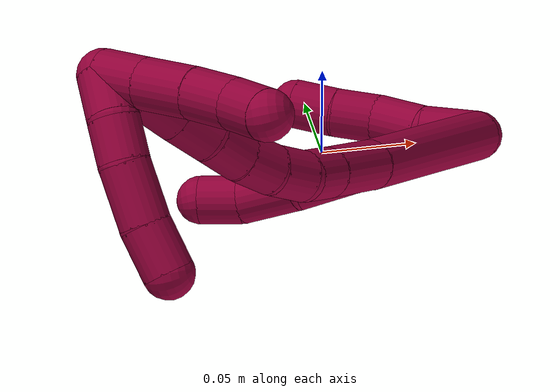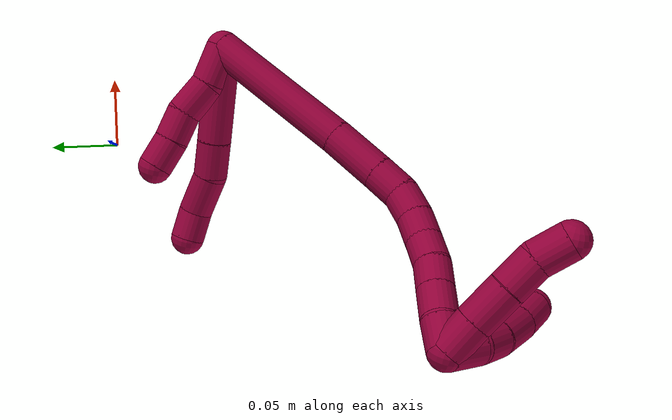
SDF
<sdf version="1.7">
 <world name="default">
  <model name="8">
   <static>0</static>
   <link name="8">
    <collision name="collision-cylinder-e_1_2_8">
     <pose>-0.000521 -0.004269 -0.034547 3.01865 -0.014963 -0.241918</pose>
     <geometry><cylinder><radius>0.0125</radius><length>0.069628</length></cylinder></geometry>
     <surface>
      <friction><ode><mu>1.16</mu><mu2>1.16</mu2><slip1>0</slip1><slip2>0</slip2></ode></friction>
      <contact><ode><kp>1e+06</kp><kd>1</kd><max_vel>0</max_vel><min_depth>0.001</min_depth></ode></contact>
     </surface>
    </collision>
    <visual name="visual-cylinder-e_1_2_8">
     <pose>-0.000521 -0.004269 -0.034547 3.01865 -0.014963 -0.241918</pose>
     <geometry><cylinder><radius>0.0125</radius><length>0.069628</length></cylinder></geometry>
     <material><ambient>0.584314 0 0.227451 1</ambient></material>
    </visual>
    <collision name="collision-cylinder-e_2_8_9">
     <pose>-0.00066 -0.010046 -0.082529 3.02977 0.028226 0.494044</pose>
     <geometry><cylinder><radius>0.0125</radius><length>0.027047</length></cylinder></geometry>
     <surface>
      <friction><ode><mu>1.16</mu><mu2>1.16</mu2><slip1>0</slip1><slip2>0</slip2></ode></friction>
      <contact><ode><kp>1e+06</kp><kd>1</kd><max_vel>0</max_vel><min_depth>0.001</min_depth></ode></contact>
     </surface>
    </collision>
    <visual name="visual-cylinder-e_2_8_9">
     <pose>-0.00066 -0.010046 -0.082529 3.02977 0.028226 0.494044</pose>
     <geometry><cylinder><radius>0.0125</radius><length>0.027047</length></cylinder></geometry>
     <material><ambient>0.584314 0 0.227451 1</ambient></material>
    </visual>
    <collision name="collision-cylinder-e_3_9_10">
     <pose>0.001953 -0.009233 -0.11124 -2.99077 0.143403 -1.52016</pose>
     <geometry><cylinder><radius>0.0125</radius><length>0.031227</length></cylinder></geometry>
     <surface>
      <friction><ode><mu>1.16</mu><mu2>1.16</mu2><slip1>0</slip1><slip2>0</slip2></ode></friction>
      <contact><ode><kp>1e+06</kp><kd>1</kd><max_vel>0</max_vel><min_depth>0.001</min_depth></ode></contact>
     </surface>
    </collision>
    <visual name="visual-cylinder-e_3_9_10">
     <pose>0.001953 -0.009233 -0.11124 -2.99077 0.143403 -1.52016</pose>
     <geometry><cylinder><radius>0.0125</radius><length>0.031227</length></cylinder></geometry>
     <material><ambient>0.584314 0 0.227451 1</ambient></material>
    </visual>
    <collision name="collision-cylinder-e_4_10_6">
     <pose>0.002147 -0.006097 -0.137347 -3.06657 -0.185424 2.37433</pose>
     <geometry><cylinder><radius>0.0125</radius><length>0.022098</length></cylinder></geometry>
     <surface>
      <friction><ode><mu>1.16</mu><mu2>1.16</mu2><slip1>0</slip1><slip2>0</slip2></ode></friction>
      <contact><ode><kp>1e+06</kp><kd>1</kd><max_vel>0</max_vel><min_depth>0.001</min_depth></ode></contact>
     </surface>
    </collision>
    <visual name="visual-cylinder-e_4_10_6">
     <pose>0.002147 -0.006097 -0.137347 -3.06657 -0.185424 2.37433</pose>
     <geometry><cylinder><radius>0.0125</radius><length>0.022098</length></cylinder></geometry>
     <material><ambient>0.584314 0 0.227451 1</ambient></material>
    </visual>
    <collision name="collision-cylinder-e_1_2_11">
     <pose>-0.003381 0.002559 -0.013742 -2.9575 -0.237318 1.82388</pose>
     <geometry><cylinder><radius>0.0125</radius><length>0.028763</length></cylinder></geometry>
     <surface>
      <friction><ode><mu>1.16</mu><mu2>1.16</mu2><slip1>0</slip1><slip2>0</slip2></ode></friction>
      <contact><ode><kp>1e+06</kp><kd>1</kd><max_vel>0</max_vel><min_depth>0.001</min_depth></ode></contact>
     </surface>
    </collision>
    <visual name="visual-cylinder-e_1_2_11">
     <pose>-0.003381 0.002559 -0.013742 -2.9575 -0.237318 1.82388</pose>
     <geometry><cylinder><radius>0.0125</radius><length>0.028763</length></cylinder></geometry>
     <material><ambient>0.584314 0 0.227451 1</ambient></material>
    </visual>
    <collision name="collision-cylinder-e_2_11_12">
     <pose>-0.008547 0.011381 -0.039102 -2.64711 -0.134426 0.521253</pose>
     <geometry><cylinder><radius>0.0125</radius><length>0.026637</length></cylinder></geometry>
     <surface>
      <friction><ode><mu>1.16</mu><mu2>1.16</mu2><slip1>0</slip1><slip2>0</slip2></ode></friction>
      <contact><ode><kp>1e+06</kp><kd>1</kd><max_vel>0</max_vel><min_depth>0.001</min_depth></ode></contact>
     </surface>
    </collision>
    <visual name="visual-cylinder-e_2_11_12">
     <pose>-0.008547 0.011381 -0.039102 -2.64711 -0.134426 0.521253</pose>
     <geometry><cylinder><radius>0.0125</radius><length>0.026637</length></cylinder></geometry>
     <material><ambient>0.584314 0 0.227451 1</ambient></material>
    </visual>
    <collision name="collision-cylinder-e_3_12_13">
     <pose>-0.01339 0.020022 -0.061321 -2.92107 -0.274376 1.78975</pose>
     <geometry><cylinder><radius>0.0125</radius><length>0.022575</length></cylinder></geometry>
     <surface>
      <friction><ode><mu>1.16</mu><mu2>1.16</mu2><slip1>0</slip1><slip2>0</slip2></ode></friction>
      <contact><ode><kp>1e+06</kp><kd>1</kd><max_vel>0</max_vel><min_depth>0.001</min_depth></ode></contact>
     </surface>
    </collision>
    <visual name="visual-cylinder-e_3_12_13">
     <pose>-0.01339 0.020022 -0.061321 -2.92107 -0.274376 1.78975</pose>
     <geometry><cylinder><radius>0.0125</radius><length>0.022575</length></cylinder></geometry>
     <material><ambient>0.584314 0 0.227451 1</ambient></material>
    </visual>
    <collision name="collision-cylinder-e_4_13_5">
     <pose>-0.019184 0.025966 -0.081977 -2.80059 -0.250992 1.26475</pose>
     <geometry><cylinder><radius>0.0125</radius><length>0.022025</length></cylinder></geometry>
     <surface>
      <friction><ode><mu>1.16</mu><mu2>1.16</mu2><slip1>0</slip1><slip2>0</slip2></ode></friction>
      <contact><ode><kp>1e+06</kp><kd>1</kd><max_vel>0</max_vel><min_depth>0.001</min_depth></ode></contact>
     </surface>
    </collision>
    <visual name="visual-cylinder-e_4_13_5">
     <pose>-0.019184 0.025966 -0.081977 -2.80059 -0.250992 1.26475</pose>
     <geometry><cylinder><radius>0.0125</radius><length>0.022025</length></cylinder></geometry>
     <material><ambient>0.584314 0 0.227451 1</ambient></material>
    </visual>
    <collision name="collision-cylinder-e_1_2_14">
     <pose>-0.029929 -0.044342 -0.016405 1.92515 -0.564344 -0.789077</pose>
     <geometry><cylinder><radius>0.0125</radius><length>0.111911</length></cylinder></geometry>
     <surface>
      <friction><ode><mu>1.16</mu><mu2>1.16</mu2><slip1>0</slip1><slip2>0</slip2></ode></friction>
      <contact><ode><kp>1e+06</kp><kd>1</kd><max_vel>0</max_vel><min_depth>0.001</min_depth></ode></contact>
     </surface>
    </collision>
    <visual name="visual-cylinder-e_1_2_14">
     <pose>-0.029929 -0.044342 -0.016405 1.92515 -0.564344 -0.789077</pose>
     <geometry><cylinder><radius>0.0125</radius><length>0.111911</length></cylinder></geometry>
     <material><ambient>0.584314 0 0.227451 1</ambient></material>
    </visual>
    <collision name="collision-cylinder-e_2_14_15">
     <pose>-0.071293 -0.104001 -0.039151 1.96328 -0.603888 -0.87222</pose>
     <geometry><cylinder><radius>0.0125</radius><length>0.04028</length></cylinder></geometry>
     <surface>
      <friction><ode><mu>1.16</mu><mu2>1.16</mu2><slip1>0</slip1><slip2>0</slip2></ode></friction>
      <contact><ode><kp>1e+06</kp><kd>1</kd><max_vel>0</max_vel><min_depth>0.001</min_depth></ode></contact>
     </surface>
    </collision>
    <visual name="visual-cylinder-e_2_14_15">
     <pose>-0.071293 -0.104001 -0.039151 1.96328 -0.603888 -0.87222</pose>
     <geometry><cylinder><radius>0.0125</radius><length>0.04028</length></cylinder></geometry>
     <material><ambient>0.584314 0 0.227451 1</ambient></material>
    </visual>
    <collision name="collision-cylinder-e_3_15_16">
     <pose>-0.088961 -0.127418 -0.04907 1.98679 -0.613206 -0.904708</pose>
     <geometry><cylinder><radius>0.0125</radius><length>0.021656</length></cylinder></geometry>
     <surface>
      <friction><ode><mu>1.16</mu><mu2>1.16</mu2><slip1>0</slip1><slip2>0</slip2></ode></friction>
      <contact><ode><kp>1e+06</kp><kd>1</kd><max_vel>0</max_vel><min_depth>0.001</min_depth></ode></contact>
     </surface>
    </collision>
    <visual name="visual-cylinder-e_3_15_16">
     <pose>-0.088961 -0.127418 -0.04907 1.98679 -0.613206 -0.904708</pose>
     <geometry><cylinder><radius>0.0125</radius><length>0.021656</length></cylinder></geometry>
     <material><ambient>0.584314 0 0.227451 1</ambient></material>
    </visual>
    <collision name="collision-cylinder-e_4_16_17">
     <pose>-0.102662 -0.140649 -0.057653 2.34357 -0.806042 -1.58195</pose>
     <geometry><cylinder><radius>0.0125</radius><length>0.020706</length></cylinder></geometry>
     <surface>
      <friction><ode><mu>1.16</mu><mu2>1.16</mu2><slip1>0</slip1><slip2>0</slip2></ode></friction>
      <contact><ode><kp>1e+06</kp><kd>1</kd><max_vel>0</max_vel><min_depth>0.001</min_depth></ode></contact>
     </surface>
    </collision>
    <visual name="visual-cylinder-e_4_16_17">
     <pose>-0.102662 -0.140649 -0.057653 2.34357 -0.806042 -1.58195</pose>
     <geometry><cylinder><radius>0.0125</radius><length>0.020706</length></cylinder></geometry>
     <material><ambient>0.584314 0 0.227451 1</ambient></material>
    </visual>
    <collision name="collision-cylinder-e_5_17_18">
     <pose>-0.118184 -0.149054 -0.067627 2.55925 -0.934338 -2.0694</pose>
     <geometry><cylinder><radius>0.0125</radius><length>0.020024</length></cylinder></geometry>
     <surface>
      <friction><ode><mu>1.16</mu><mu2>1.16</mu2><slip1>0</slip1><slip2>0</slip2></ode></friction>
      <contact><ode><kp>1e+06</kp><kd>1</kd><max_vel>0</max_vel><min_depth>0.001</min_depth></ode></contact>
     </surface>
    </collision>
    <visual name="visual-cylinder-e_5_17_18">
     <pose>-0.118184 -0.149054 -0.067627 2.55925 -0.934338 -2.0694</pose>
     <geometry><cylinder><radius>0.0125</radius><length>0.020024</length></cylinder></geometry>
     <material><ambient>0.584314 0 0.227451 1</ambient></material>
    </visual>
    <collision name="collision-cylinder-e_6_18_19">
     <pose>-0.135186 -0.154897 -0.076856 2.59883 -1.06347 -2.25796</pose>
     <geometry><cylinder><radius>0.0125</radius><length>0.020479</length></cylinder></geometry>
     <surface>
      <friction><ode><mu>1.16</mu><mu2>1.16</mu2><slip1>0</slip1><slip2>0</slip2></ode></friction>
      <contact><ode><kp>1e+06</kp><kd>1</kd><max_vel>0</max_vel><min_depth>0.001</min_depth></ode></contact>
     </surface>
    </collision>
    <visual name="visual-cylinder-e_6_18_19">
     <pose>-0.135186 -0.154897 -0.076856 2.59883 -1.06347 -2.25796</pose>
     <geometry><cylinder><radius>0.0125</radius><length>0.020479</length></cylinder></geometry>
     <material><ambient>0.584314 0 0.227451 1</ambient></material>
    </visual>
    <collision name="collision-cylinder-e_7_19_20">
     <pose>-0.152799 -0.158612 -0.086368 2.92679 -1.01543 -2.75876</pose>
     <geometry><cylinder><radius>0.0125</radius><length>0.020392</length></cylinder></geometry>
     <surface>
      <friction><ode><mu>1.16</mu><mu2>1.16</mu2><slip1>0</slip1><slip2>0</slip2></ode></friction>
      <contact><ode><kp>1e+06</kp><kd>1</kd><max_vel>0</max_vel><min_depth>0.001</min_depth></ode></contact>
     </surface>
    </collision>
    <visual name="visual-cylinder-e_7_19_20">
     <pose>-0.152799 -0.158612 -0.086368 2.92679 -1.01543 -2.75876</pose>
     <geometry><cylinder><radius>0.0125</radius><length>0.020392</length></cylinder></geometry>
     <material><ambient>0.584314 0 0.227451 1</ambient></material>
    </visual>
    <collision name="collision-cylinder-e_8_20_21">
     <pose>-0.171367 -0.160983 -0.09714 2.92321 -1.05211 -2.76837</pose>
     <geometry><cylinder><radius>0.0125</radius><length>0.022808</length></cylinder></geometry>
     <surface>
      <friction><ode><mu>1.16</mu><mu2>1.16</mu2><slip1>0</slip1><slip2>0</slip2></ode></friction>
      <contact><ode><kp>1e+06</kp><kd>1</kd><max_vel>0</max_vel><min_depth>0.001</min_depth></ode></contact>
     </surface>
    </collision>
    <visual name="visual-cylinder-e_8_20_21">
     <pose>-0.171367 -0.160983 -0.09714 2.92321 -1.05211 -2.76837</pose>
     <geometry><cylinder><radius>0.0125</radius><length>0.022808</length></cylinder></geometry>
     <material><ambient>0.584314 0 0.227451 1</ambient></material>
    </visual>
    <collision name="collision-cylinder-e_9_21_1">
     <pose>-0.189862 -0.164573 -0.108888 2.77864 -0.911127 -2.42488</pose>
     <geometry><cylinder><radius>0.0125</radius><length>0.021745</length></cylinder></geometry>
     <surface>
      <friction><ode><mu>1.16</mu><mu2>1.16</mu2><slip1>0</slip1><slip2>0</slip2></ode></friction>
      <contact><ode><kp>1e+06</kp><kd>1</kd><max_vel>0</max_vel><min_depth>0.001</min_depth></ode></contact>
     </surface>
    </collision>
    <visual name="visual-cylinder-e_9_21_1">
     <pose>-0.189862 -0.164573 -0.108888 2.77864 -0.911127 -2.42488</pose>
     <geometry><cylinder><radius>0.0125</radius><length>0.021745</length></cylinder></geometry>
     <material><ambient>0.584314 0 0.227451 1</ambient></material>
    </visual>
    <collision name="collision-cylinder-e_1_1_22">
     <pose>-0.192623 -0.177159 -0.113491 1.41298 0.513081 0.440487</pose>
     <geometry><cylinder><radius>0.0125</radius><length>0.023756</length></cylinder></geometry>
     <surface>
      <friction><ode><mu>1.16</mu><mu2>1.16</mu2><slip1>0</slip1><slip2>0</slip2></ode></friction>
      <contact><ode><kp>1e+06</kp><kd>1</kd><max_vel>0</max_vel><min_depth>0.001</min_depth></ode></contact>
     </surface>
    </collision>
    <visual name="visual-cylinder-e_1_1_22">
     <pose>-0.192623 -0.177159 -0.113491 1.41298 0.513081 0.440487</pose>
     <geometry><cylinder><radius>0.0125</radius><length>0.023756</length></cylinder></geometry>
     <material><ambient>0.584314 0 0.227451 1</ambient></material>
    </visual>
    <collision name="collision-cylinder-e_2_22_23">
     <pose>-0.179302 -0.194999 -0.111026 1.46114 0.773804 0.700027</pose>
     <geometry><cylinder><radius>0.0125</radius><length>0.021436</length></cylinder></geometry>
     <surface>
      <friction><ode><mu>1.16</mu><mu2>1.16</mu2><slip1>0</slip1><slip2>0</slip2></ode></friction>
      <contact><ode><kp>1e+06</kp><kd>1</kd><max_vel>0</max_vel><min_depth>0.001</min_depth></ode></contact>
     </surface>
    </collision>
    <visual name="visual-cylinder-e_2_22_23">
     <pose>-0.179302 -0.194999 -0.111026 1.46114 0.773804 0.700027</pose>
     <geometry><cylinder><radius>0.0125</radius><length>0.021436</length></cylinder></geometry>
     <material><ambient>0.584314 0 0.227451 1</ambient></material>
    </visual>
    <collision name="collision-cylinder-e_3_23_24">
     <pose>-0.159783 -0.211559 -0.108229 1.3552 0.920434 0.759128</pose>
     <geometry><cylinder><radius>0.0125</radius><length>0.030228</length></cylinder></geometry>
     <surface>
      <friction><ode><mu>1.16</mu><mu2>1.16</mu2><slip1>0</slip1><slip2>0</slip2></ode></friction>
      <contact><ode><kp>1e+06</kp><kd>1</kd><max_vel>0</max_vel><min_depth>0.001</min_depth></ode></contact>
     </surface>
    </collision>
    <visual name="visual-cylinder-e_3_23_24">
     <pose>-0.159783 -0.211559 -0.108229 1.3552 0.920434 0.759128</pose>
     <geometry><cylinder><radius>0.0125</radius><length>0.030228</length></cylinder></geometry>
     <material><ambient>0.584314 0 0.227451 1</ambient></material>
    </visual>
    <collision name="collision-cylinder-e_4_24_4">
     <pose>-0.137884 -0.227175 -0.103264 1.1476 0.932468 0.628943</pose>
     <geometry><cylinder><radius>0.0125</radius><length>0.024579</length></cylinder></geometry>
     <surface>
      <friction><ode><mu>1.16</mu><mu2>1.16</mu2><slip1>0</slip1><slip2>0</slip2></ode></friction>
      <contact><ode><kp>1e+06</kp><kd>1</kd><max_vel>0</max_vel><min_depth>0.001</min_depth></ode></contact>
     </surface>
    </collision>
    <visual name="visual-cylinder-e_4_24_4">
     <pose>-0.137884 -0.227175 -0.103264 1.1476 0.932468 0.628943</pose>
     <geometry><cylinder><radius>0.0125</radius><length>0.024579</length></cylinder></geometry>
     <material><ambient>0.584314 0 0.227451 1</ambient></material>
    </visual>
    <collision name="collision-cylinder-e_1_1_25">
     <pose>-0.197363 -0.172559 -0.104515 0.48745 0.090635 0.022553</pose>
     <geometry><cylinder><radius>0.0125</radius><length>0.0241</length></cylinder></geometry>
     <surface>
      <friction><ode><mu>1.16</mu><mu2>1.16</mu2><slip1>0</slip1><slip2>0</slip2></ode></friction>
      <contact><ode><kp>1e+06</kp><kd>1</kd><max_vel>0</max_vel><min_depth>0.001</min_depth></ode></contact>
     </surface>
    </collision>
    <visual name="visual-cylinder-e_1_1_25">
     <pose>-0.197363 -0.172559 -0.104515 0.48745 0.090635 0.022553</pose>
     <geometry><cylinder><radius>0.0125</radius><length>0.0241</length></cylinder></geometry>
     <material><ambient>0.584314 0 0.227451 1</ambient></material>
    </visual>
    <collision name="collision-cylinder-e_2_25_26">
     <pose>-0.195485 -0.185067 -0.081613 0.510437 0.055776 0.014556</pose>
     <geometry><cylinder><radius>0.0125</radius><length>0.028236</length></cylinder></geometry>
     <surface>
      <friction><ode><mu>1.16</mu><mu2>1.16</mu2><slip1>0</slip1><slip2>0</slip2></ode></friction>
      <contact><ode><kp>1e+06</kp><kd>1</kd><max_vel>0</max_vel><min_depth>0.001</min_depth></ode></contact>
     </surface>
    </collision>
    <visual name="visual-cylinder-e_2_25_26">
     <pose>-0.195485 -0.185067 -0.081613 0.510437 0.055776 0.014556</pose>
     <geometry><cylinder><radius>0.0125</radius><length>0.028236</length></cylinder></geometry>
     <material><ambient>0.584314 0 0.227451 1</ambient></material>
    </visual>
    <collision name="collision-cylinder-e_3_26_27">
     <pose>-0.193501 -0.198088 -0.059129 0.54213 0.10036 0.027912</pose>
     <geometry><cylinder><radius>0.0125</radius><length>0.023897</length></cylinder></geometry>
     <surface>
      <friction><ode><mu>1.16</mu><mu2>1.16</mu2><slip1>0</slip1><slip2>0</slip2></ode></friction>
      <contact><ode><kp>1e+06</kp><kd>1</kd><max_vel>0</max_vel><min_depth>0.001</min_depth></ode></contact>
     </surface>
    </collision>
    <visual name="visual-cylinder-e_3_26_27">
     <pose>-0.193501 -0.198088 -0.059129 0.54213 0.10036 0.027912</pose>
     <geometry><cylinder><radius>0.0125</radius><length>0.023897</length></cylinder></geometry>
     <material><ambient>0.584314 0 0.227451 1</ambient></material>
    </visual>
    <collision name="collision-cylinder-e_4_27_3">
     <pose>-0.193335 -0.212429 -0.040414 0.766018 -0.086865 -0.035017</pose>
     <geometry><cylinder><radius>0.0125</radius><length>0.023767</length></cylinder></geometry>
     <surface>
      <friction><ode><mu>1.16</mu><mu2>1.16</mu2><slip1>0</slip1><slip2>0</slip2></ode></friction>
      <contact><ode><kp>1e+06</kp><kd>1</kd><max_vel>0</max_vel><min_depth>0.001</min_depth></ode></contact>
     </surface>
    </collision>
    <visual name="visual-cylinder-e_4_27_3">
     <pose>-0.193335 -0.212429 -0.040414 0.766018 -0.086865 -0.035017</pose>
     <geometry><cylinder><radius>0.0125</radius><length>0.023767</length></cylinder></geometry>
     <material><ambient>0.584314 0 0.227451 1</ambient></material>
    </visual>
    <collision name="collision-sphere-3">
     <pose>-0.194366 -0.220636 -0.031882 0 -0 0</pose>
     <geometry><sphere><radius>0.0125</radius></sphere></geometry>
     <surface>
      <friction><ode><mu>1.16</mu><mu2>1.16</mu2><slip1>0</slip1><slip2>0</slip2></ode></friction>
      <contact><ode><kp>1e+06</kp><kd>1</kd><max_vel>0</max_vel><min_depth>0.001</min_depth></ode></contact>
     </surface>
    </collision>
    <visual name="visual-sphere-3">
     <pose>-0.194366 -0.220636 -0.031882 0 -0 0</pose>
     <geometry><sphere><radius>0.0125</radius></sphere></geometry>
     <material><ambient>0.584314 0 0.227451 1</ambient></material>
    </visual>
    <collision name="collision-sphere-27">
     <pose>-0.192304 -0.204222 -0.048946 0 -0 0</pose>
     <geometry><sphere><radius>0.0125</radius></sphere></geometry>
     <surface>
      <friction><ode><mu>1.16</mu><mu2>1.16</mu2><slip1>0</slip1><slip2>0</slip2></ode></friction>
      <contact><ode><kp>1e+06</kp><kd>1</kd><max_vel>0</max_vel><min_depth>0.001</min_depth></ode></contact>
     </surface>
    </collision>
    <visual name="visual-sphere-27">
     <pose>-0.192304 -0.204222 -0.048946 0 -0 0</pose>
     <geometry><sphere><radius>0.0125</radius></sphere></geometry>
     <material><ambient>0.584314 0 0.227451 1</ambient></material>
    </visual>
    <collision name="collision-sphere-26">
     <pose>-0.194698 -0.191954 -0.069313 0 -0 0</pose>
     <geometry><sphere><radius>0.0125</radius></sphere></geometry>
     <surface>
      <friction><ode><mu>1.16</mu><mu2>1.16</mu2><slip1>0</slip1><slip2>0</slip2></ode></friction>
      <contact><ode><kp>1e+06</kp><kd>1</kd><max_vel>0</max_vel><min_depth>0.001</min_depth></ode></contact>
     </surface>
    </collision>
    <visual name="visual-sphere-26">
     <pose>-0.194698 -0.191954 -0.069313 0 -0 0</pose>
     <geometry><sphere><radius>0.0125</radius></sphere></geometry>
     <material><ambient>0.584314 0 0.227451 1</ambient></material>
    </visual>
    <collision name="collision-sphere-25">
     <pose>-0.196272 -0.17818 -0.093912 0 -0 0</pose>
     <geometry><sphere><radius>0.0125</radius></sphere></geometry>
     <surface>
      <friction><ode><mu>1.16</mu><mu2>1.16</mu2><slip1>0</slip1><slip2>0</slip2></ode></friction>
      <contact><ode><kp>1e+06</kp><kd>1</kd><max_vel>0</max_vel><min_depth>0.001</min_depth></ode></contact>
     </surface>
    </collision>
    <visual name="visual-sphere-25">
     <pose>-0.196272 -0.17818 -0.093912 0 -0 0</pose>
     <geometry><sphere><radius>0.0125</radius></sphere></geometry>
     <material><ambient>0.584314 0 0.227451 1</ambient></material>
    </visual>
    <collision name="collision-sphere-4">
     <pose>-0.128014 -0.233852 -0.100257 0 -0 0</pose>
     <geometry><sphere><radius>0.0125</radius></sphere></geometry>
     <surface>
      <friction><ode><mu>1.16</mu><mu2>1.16</mu2><slip1>0</slip1><slip2>0</slip2></ode></friction>
      <contact><ode><kp>1e+06</kp><kd>1</kd><max_vel>0</max_vel><min_depth>0.001</min_depth></ode></contact>
     </surface>
    </collision>
    <visual name="visual-sphere-4">
     <pose>-0.128014 -0.233852 -0.100257 0 -0 0</pose>
     <geometry><sphere><radius>0.0125</radius></sphere></geometry>
     <material><ambient>0.584314 0 0.227451 1</ambient></material>
    </visual>
    <collision name="collision-sphere-24">
     <pose>-0.147754 -0.220498 -0.106271 0 -0 0</pose>
     <geometry><sphere><radius>0.0125</radius></sphere></geometry>
     <surface>
      <friction><ode><mu>1.16</mu><mu2>1.16</mu2><slip1>0</slip1><slip2>0</slip2></ode></friction>
      <contact><ode><kp>1e+06</kp><kd>1</kd><max_vel>0</max_vel><min_depth>0.001</min_depth></ode></contact>
     </surface>
    </collision>
    <visual name="visual-sphere-24">
     <pose>-0.147754 -0.220498 -0.106271 0 -0 0</pose>
     <geometry><sphere><radius>0.0125</radius></sphere></geometry>
     <material><ambient>0.584314 0 0.227451 1</ambient></material>
    </visual>
    <collision name="collision-sphere-23">
     <pose>-0.171811 -0.202619 -0.110187 0 -0 0</pose>
     <geometry><sphere><radius>0.0125</radius></sphere></geometry>
     <surface>
      <friction><ode><mu>1.16</mu><mu2>1.16</mu2><slip1>0</slip1><slip2>0</slip2></ode></friction>
      <contact><ode><kp>1e+06</kp><kd>1</kd><max_vel>0</max_vel><min_depth>0.001</min_depth></ode></contact>
     </surface>
    </collision>
    <visual name="visual-sphere-23">
     <pose>-0.171811 -0.202619 -0.110187 0 -0 0</pose>
     <geometry><sphere><radius>0.0125</radius></sphere></geometry>
     <material><ambient>0.584314 0 0.227451 1</ambient></material>
    </visual>
    <collision name="collision-sphere-22">
     <pose>-0.186792 -0.187379 -0.111864 0 -0 0</pose>
     <geometry><sphere><radius>0.0125</radius></sphere></geometry>
     <surface>
      <friction><ode><mu>1.16</mu><mu2>1.16</mu2><slip1>0</slip1><slip2>0</slip2></ode></friction>
      <contact><ode><kp>1e+06</kp><kd>1</kd><max_vel>0</max_vel><min_depth>0.001</min_depth></ode></contact>
     </surface>
    </collision>
    <visual name="visual-sphere-22">
     <pose>-0.186792 -0.187379 -0.111864 0 -0 0</pose>
     <geometry><sphere><radius>0.0125</radius></sphere></geometry>
     <material><ambient>0.584314 0 0.227451 1</ambient></material>
    </visual>
    <collision name="collision-sphere-1">
     <pose>-0.198454 -0.166939 -0.115117 0 -0 0</pose>
     <geometry><sphere><radius>0.0125</radius></sphere></geometry>
     <surface>
      <friction><ode><mu>1.16</mu><mu2>1.16</mu2><slip1>0</slip1><slip2>0</slip2></ode></friction>
      <contact><ode><kp>1e+06</kp><kd>1</kd><max_vel>0</max_vel><min_depth>0.001</min_depth></ode></contact>
     </surface>
    </collision>
    <visual name="visual-sphere-1">
     <pose>-0.198454 -0.166939 -0.115117 0 -0 0</pose>
     <geometry><sphere><radius>0.0125</radius></sphere></geometry>
     <material><ambient>0.584314 0 0.227451 1</ambient></material>
    </visual>
    <collision name="collision-sphere-21">
     <pose>-0.181271 -0.162207 -0.102659 0 -0 0</pose>
     <geometry><sphere><radius>0.0125</radius></sphere></geometry>
     <surface>
      <friction><ode><mu>1.16</mu><mu2>1.16</mu2><slip1>0</slip1><slip2>0</slip2></ode></friction>
      <contact><ode><kp>1e+06</kp><kd>1</kd><max_vel>0</max_vel><min_depth>0.001</min_depth></ode></contact>
     </surface>
    </collision>
    <visual name="visual-sphere-21">
     <pose>-0.181271 -0.162207 -0.102659 0 -0 0</pose>
     <geometry><sphere><radius>0.0125</radius></sphere></geometry>
     <material><ambient>0.584314 0 0.227451 1</ambient></material>
    </visual>
    <collision name="collision-sphere-11">
     <pose>-0.006762 0.005118 -0.027484 0 -0 0</pose>
     <geometry><sphere><radius>0.0125</radius></sphere></geometry>
     <surface>
      <friction><ode><mu>1.16</mu><mu2>1.16</mu2><slip1>0</slip1><slip2>0</slip2></ode></friction>
      <contact><ode><kp>1e+06</kp><kd>1</kd><max_vel>0</max_vel><min_depth>0.001</min_depth></ode></contact>
     </surface>
    </collision>
    <visual name="visual-sphere-11">
     <pose>-0.006762 0.005118 -0.027484 0 -0 0</pose>
     <geometry><sphere><radius>0.0125</radius></sphere></geometry>
     <material><ambient>0.584314 0 0.227451 1</ambient></material>
    </visual>
    <collision name="collision-sphere-6">
     <pose>0.00011 -0.005283 -0.148176 0 -0 0</pose>
     <geometry><sphere><radius>0.0125</radius></sphere></geometry>
     <surface>
      <friction><ode><mu>1.16</mu><mu2>1.16</mu2><slip1>0</slip1><slip2>0</slip2></ode></friction>
      <contact><ode><kp>1e+06</kp><kd>1</kd><max_vel>0</max_vel><min_depth>0.001</min_depth></ode></contact>
     </surface>
    </collision>
    <visual name="visual-sphere-6">
     <pose>0.00011 -0.005283 -0.148176 0 -0 0</pose>
     <geometry><sphere><radius>0.0125</radius></sphere></geometry>
     <material><ambient>0.584314 0 0.227451 1</ambient></material>
    </visual>
    <collision name="collision-sphere-10">
     <pose>0.004184 -0.006911 -0.126518 0 -0 0</pose>
     <geometry><sphere><radius>0.0125</radius></sphere></geometry>
     <surface>
      <friction><ode><mu>1.16</mu><mu2>1.16</mu2><slip1>0</slip1><slip2>0</slip2></ode></friction>
      <contact><ode><kp>1e+06</kp><kd>1</kd><max_vel>0</max_vel><min_depth>0.001</min_depth></ode></contact>
     </surface>
    </collision>
    <visual name="visual-sphere-10">
     <pose>0.004184 -0.006911 -0.126518 0 -0 0</pose>
     <geometry><sphere><radius>0.0125</radius></sphere></geometry>
     <material><ambient>0.584314 0 0.227451 1</ambient></material>
    </visual>
    <collision name="collision-sphere-9">
     <pose>-0.000278 -0.011555 -0.095963 0 -0 0</pose>
     <geometry><sphere><radius>0.0125</radius></sphere></geometry>
     <surface>
      <friction><ode><mu>1.16</mu><mu2>1.16</mu2><slip1>0</slip1><slip2>0</slip2></ode></friction>
      <contact><ode><kp>1e+06</kp><kd>1</kd><max_vel>0</max_vel><min_depth>0.001</min_depth></ode></contact>
     </surface>
    </collision>
    <visual name="visual-sphere-9">
     <pose>-0.000278 -0.011555 -0.095963 0 -0 0</pose>
     <geometry><sphere><radius>0.0125</radius></sphere></geometry>
     <material><ambient>0.584314 0 0.227451 1</ambient></material>
    </visual>
    <collision name="collision-sphere-2">
     <geometry><sphere><radius>0.0125</radius></sphere></geometry>
     <surface>
      <friction><ode><mu>1.16</mu><mu2>1.16</mu2><slip1>0</slip1><slip2>0</slip2></ode></friction>
      <contact><ode><kp>1e+06</kp><kd>1</kd><max_vel>0</max_vel><min_depth>0.001</min_depth></ode></contact>
     </surface>
    </collision>
    <visual name="visual-sphere-2">
     <geometry><sphere><radius>0.0125</radius></sphere></geometry>
     <material><ambient>0.584314 0 0.227451 1</ambient></material>
    </visual>
    <collision name="collision-sphere-19">
     <pose>-0.144135 -0.157466 -0.081116 0 -0 0</pose>
     <geometry><sphere><radius>0.0125</radius></sphere></geometry>
     <surface>
      <friction><ode><mu>1.16</mu><mu2>1.16</mu2><slip1>0</slip1><slip2>0</slip2></ode></friction>
      <contact><ode><kp>1e+06</kp><kd>1</kd><max_vel>0</max_vel><min_depth>0.001</min_depth></ode></contact>
     </surface>
    </collision>
    <visual name="visual-sphere-19">
     <pose>-0.144135 -0.157466 -0.081116 0 -0 0</pose>
     <geometry><sphere><radius>0.0125</radius></sphere></geometry>
     <material><ambient>0.584314 0 0.227451 1</ambient></material>
    </visual>
    <collision name="collision-sphere-8">
     <pose>-0.001042 -0.008538 -0.069095 0 -0 0</pose>
     <geometry><sphere><radius>0.0125</radius></sphere></geometry>
     <surface>
      <friction><ode><mu>1.16</mu><mu2>1.16</mu2><slip1>0</slip1><slip2>0</slip2></ode></friction>
      <contact><ode><kp>1e+06</kp><kd>1</kd><max_vel>0</max_vel><min_depth>0.001</min_depth></ode></contact>
     </surface>
    </collision>
    <visual name="visual-sphere-8">
     <pose>-0.001042 -0.008538 -0.069095 0 -0 0</pose>
     <geometry><sphere><radius>0.0125</radius></sphere></geometry>
     <material><ambient>0.584314 0 0.227451 1</ambient></material>
    </visual>
    <collision name="collision-sphere-12">
     <pose>-0.010332 0.017645 -0.050719 0 -0 0</pose>
     <geometry><sphere><radius>0.0125</radius></sphere></geometry>
     <surface>
      <friction><ode><mu>1.16</mu><mu2>1.16</mu2><slip1>0</slip1><slip2>0</slip2></ode></friction>
      <contact><ode><kp>1e+06</kp><kd>1</kd><max_vel>0</max_vel><min_depth>0.001</min_depth></ode></contact>
     </surface>
    </collision>
    <visual name="visual-sphere-12">
     <pose>-0.010332 0.017645 -0.050719 0 -0 0</pose>
     <geometry><sphere><radius>0.0125</radius></sphere></geometry>
     <material><ambient>0.584314 0 0.227451 1</ambient></material>
    </visual>
    <collision name="collision-sphere-13">
     <pose>-0.016449 0.022398 -0.071924 0 -0 0</pose>
     <geometry><sphere><radius>0.0125</radius></sphere></geometry>
     <surface>
      <friction><ode><mu>1.16</mu><mu2>1.16</mu2><slip1>0</slip1><slip2>0</slip2></ode></friction>
      <contact><ode><kp>1e+06</kp><kd>1</kd><max_vel>0</max_vel><min_depth>0.001</min_depth></ode></contact>
     </surface>
    </collision>
    <visual name="visual-sphere-13">
     <pose>-0.016449 0.022398 -0.071924 0 -0 0</pose>
     <geometry><sphere><radius>0.0125</radius></sphere></geometry>
     <material><ambient>0.584314 0 0.227451 1</ambient></material>
    </visual>
    <collision name="collision-sphere-5">
     <pose>-0.021919 0.029533 -0.09203 0 -0 0</pose>
     <geometry><sphere><radius>0.0125</radius></sphere></geometry>
     <surface>
      <friction><ode><mu>1.16</mu><mu2>1.16</mu2><slip1>0</slip1><slip2>0</slip2></ode></friction>
      <contact><ode><kp>1e+06</kp><kd>1</kd><max_vel>0</max_vel><min_depth>0.001</min_depth></ode></contact>
     </surface>
    </collision>
    <visual name="visual-sphere-5">
     <pose>-0.021919 0.029533 -0.09203 0 -0 0</pose>
     <geometry><sphere><radius>0.0125</radius></sphere></geometry>
     <material><ambient>0.584314 0 0.227451 1</ambient></material>
    </visual>
    <collision name="collision-sphere-14">
     <pose>-0.059857 -0.088683 -0.03281 0 -0 0</pose>
     <geometry><sphere><radius>0.0125</radius></sphere></geometry>
     <surface>
      <friction><ode><mu>1.16</mu><mu2>1.16</mu2><slip1>0</slip1><slip2>0</slip2></ode></friction>
      <contact><ode><kp>1e+06</kp><kd>1</kd><max_vel>0</max_vel><min_depth>0.001</min_depth></ode></contact>
     </surface>
    </collision>
    <visual name="visual-sphere-14">
     <pose>-0.059857 -0.088683 -0.03281 0 -0 0</pose>
     <geometry><sphere><radius>0.0125</radius></sphere></geometry>
     <material><ambient>0.584314 0 0.227451 1</ambient></material>
    </visual>
    <collision name="collision-sphere-15">
     <pose>-0.08273 -0.119318 -0.045492 0 -0 0</pose>
     <geometry><sphere><radius>0.0125</radius></sphere></geometry>
     <surface>
      <friction><ode><mu>1.16</mu><mu2>1.16</mu2><slip1>0</slip1><slip2>0</slip2></ode></friction>
      <contact><ode><kp>1e+06</kp><kd>1</kd><max_vel>0</max_vel><min_depth>0.001</min_depth></ode></contact>
     </surface>
    </collision>
    <visual name="visual-sphere-15">
     <pose>-0.08273 -0.119318 -0.045492 0 -0 0</pose>
     <geometry><sphere><radius>0.0125</radius></sphere></geometry>
     <material><ambient>0.584314 0 0.227451 1</ambient></material>
    </visual>
    <collision name="collision-sphere-16">
     <pose>-0.095192 -0.135517 -0.052649 0 -0 0</pose>
     <geometry><sphere><radius>0.0125</radius></sphere></geometry>
     <surface>
      <friction><ode><mu>1.16</mu><mu2>1.16</mu2><slip1>0</slip1><slip2>0</slip2></ode></friction>
      <contact><ode><kp>1e+06</kp><kd>1</kd><max_vel>0</max_vel><min_depth>0.001</min_depth></ode></contact>
     </surface>
    </collision>
    <visual name="visual-sphere-16">
     <pose>-0.095192 -0.135517 -0.052649 0 -0 0</pose>
     <geometry><sphere><radius>0.0125</radius></sphere></geometry>
     <material><ambient>0.584314 0 0.227451 1</ambient></material>
    </visual>
    <collision name="collision-sphere-17">
     <pose>-0.110132 -0.145781 -0.062657 0 -0 0</pose>
     <geometry><sphere><radius>0.0125</radius></sphere></geometry>
     <surface>
      <friction><ode><mu>1.16</mu><mu2>1.16</mu2><slip1>0</slip1><slip2>0</slip2></ode></friction>
      <contact><ode><kp>1e+06</kp><kd>1</kd><max_vel>0</max_vel><min_depth>0.001</min_depth></ode></contact>
     </surface>
    </collision>
    <visual name="visual-sphere-17">
     <pose>-0.110132 -0.145781 -0.062657 0 -0 0</pose>
     <geometry><sphere><radius>0.0125</radius></sphere></geometry>
     <material><ambient>0.584314 0 0.227451 1</ambient></material>
    </visual>
    <collision name="collision-sphere-18">
     <pose>-0.126236 -0.152327 -0.072596 0 -0 0</pose>
     <geometry><sphere><radius>0.0125</radius></sphere></geometry>
     <surface>
      <friction><ode><mu>1.16</mu><mu2>1.16</mu2><slip1>0</slip1><slip2>0</slip2></ode></friction>
      <contact><ode><kp>1e+06</kp><kd>1</kd><max_vel>0</max_vel><min_depth>0.001</min_depth></ode></contact>
     </surface>
    </collision>
    <visual name="visual-sphere-18">
     <pose>-0.126236 -0.152327 -0.072596 0 -0 0</pose>
     <geometry><sphere><radius>0.0125</radius></sphere></geometry>
     <material><ambient>0.584314 0 0.227451 1</ambient></material>
    </visual>
    <collision name="collision-sphere-20">
     <pose>-0.161463 -0.159758 -0.091621 0 -0 0</pose>
     <geometry><sphere><radius>0.0125</radius></sphere></geometry>
     <surface>
      <friction><ode><mu>1.16</mu><mu2>1.16</mu2><slip1>0</slip1><slip2>0</slip2></ode></friction>
      <contact><ode><kp>1e+06</kp><kd>1</kd><max_vel>0</max_vel><min_depth>0.001</min_depth></ode></contact>
     </surface>
    </collision>
    <visual name="visual-sphere-20">
     <pose>-0.161463 -0.159758 -0.091621 0 -0 0</pose>
     <geometry><sphere><radius>0.0125</radius></sphere></geometry>
     <material><ambient>0.584314 0 0.227451 1</ambient></material>
    </visual>
    <inertial>
     <pose>-0.084921 -0.09412 -0.065063 0 -0 0</pose>
     <mass>0.75</mass>
     <inertia><ixx>3e-05</ixx><ixy>0</ixy><ixz>0</ixz><iyy>-9.5e-05</iyy><iyz>0</iyz><izz>0.000169</izz></inertia>
    </inertial>
   </link>
   <pose>0.063617 -0.087185 0.056723 0.310786 1.25401 0.04062</pose>
  </model>
 </world>
</sdf>
